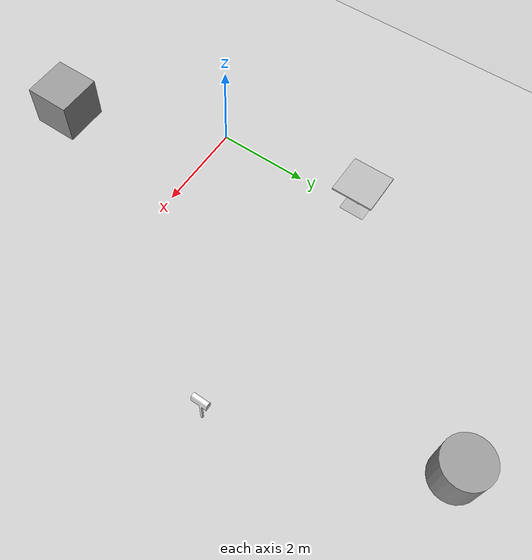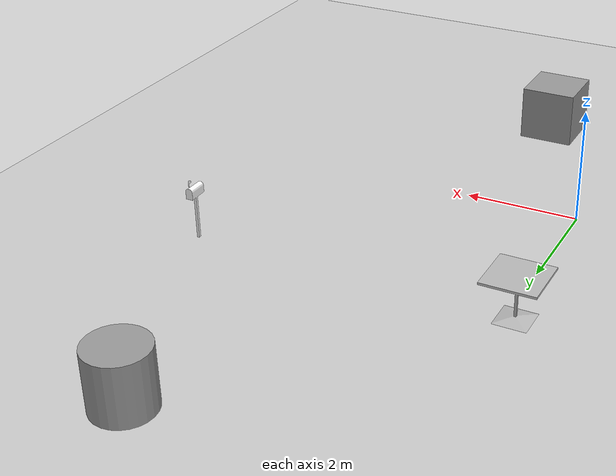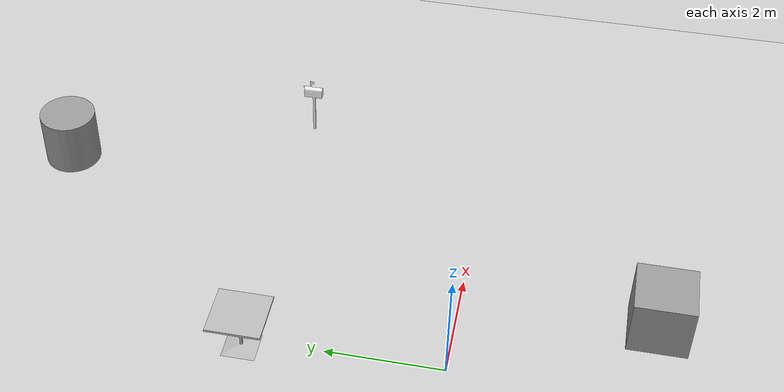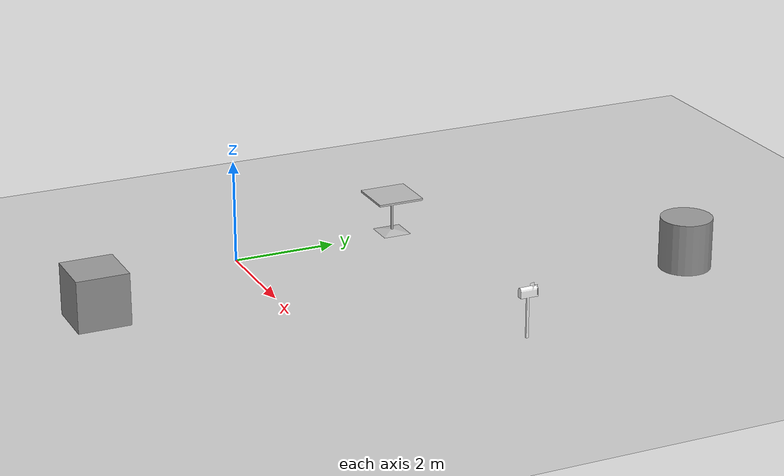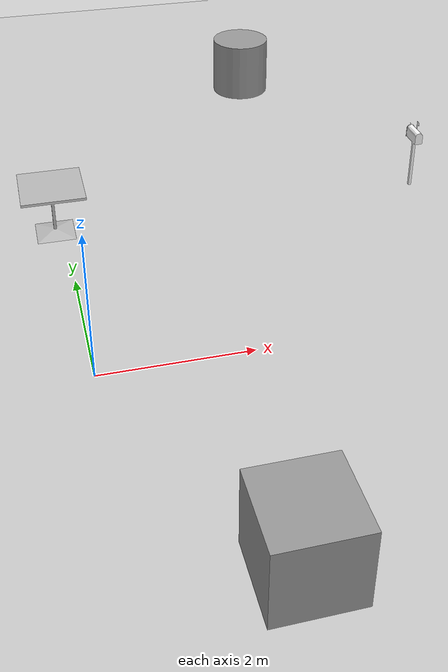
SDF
<sdf version="1.7">
 <world name="default">
  <light name="sun" type="directional">
   <pose>0 0 10 0 -0 0</pose>
   <diffuse>0.8 0.8 0.8 1</diffuse>
   <specular>0.2 0.2 0.2 1</specular>
   <attenuation>
    <range>1000</range>
    <constant>0.9</constant>
    <linear>0.01</linear>
    <quadratic>0.001</quadratic>
   </attenuation>
   <direction>-0.5 0.1 -0.9</direction>
   <spot><inner_angle>0</inner_angle><outer_angle>0</outer_angle><falloff>0</falloff></spot>
  </light>
  <model name="ground_plane">
   <static>1</static>
   <link name="link">
    <collision name="collision">
     <geometry><plane><normal>0 0 1</normal><size>100 100</size></plane></geometry>
     <surface><friction><ode><mu>100</mu><mu2>50</mu2></ode></friction></surface>
    </collision>
    <visual name="visual">
     <cast_shadows>0</cast_shadows>
     <geometry><plane><normal>0 0 1</normal><size>100 100</size></plane></geometry>
     <material>
      <script><uri>file://media/materials/scripts/gazebo.material</uri><name>Gazebo/Grey</name></script>
     </material>
    </visual>
   </link>
  </model>
  <gravity>0 0 -9.8</gravity>
  <magnetic_field>6e-06 2.3e-05 -4.2e-05</magnetic_field>
  <atmosphere type="adiabatic"/>
  <physics type="ode">
   <max_step_size>0.001</max_step_size>
   <real_time_factor>1</real_time_factor>
   <real_time_update_rate>1000</real_time_update_rate>
  </physics>
  <scene><ambient>0.4 0.4 0.4 1</ambient><background>0.7 0.7 0.7 1</background><shadows>1</shadows></scene>
  <audio><device>default</device></audio>
  <spherical_coordinates>
   <surface_model>EARTH_WGS84</surface_model>
   <latitude_deg>0</latitude_deg>
   <longitude_deg>0</longitude_deg>
   <elevation>0</elevation>
   <heading_deg>0</heading_deg>
  </spherical_coordinates>
  <model name="cafe_table">
   <static>1</static>
   <link name="link">
    <collision name="surface">
     <pose>0 0 0.755 0 -0 0</pose>
     <geometry><box><size>0.913 0.913 0.04</size></box></geometry>
    </collision>
    <collision name="column">
     <pose>0 0 0.37 0 -0 0</pose>
     <geometry><box><size>0.042 0.042 0.74</size></box></geometry>
    </collision>
    <collision name="base">
     <pose>0 0 0.02 0 -0 0</pose>
     <geometry><box><size>0.56 0.56 0.04</size></box></geometry>
    </collision>
    <visual name="visual">
     <geometry><mesh><uri>model://cafe_table/meshes/cafe_table.dae</uri></mesh></geometry>
    </visual>
   </link>
   <pose>-0.14081 3.33313 0 0 -0 0</pose>
  </model>
  <model name="unit_box">
   <pose>1.5475 -3.27249 0.499995 -1e-05 -0 -0</pose>
   <link name="link">
    <inertial>
     <mass>1</mass>
     <inertia>
      <ixx>0.166667</ixx>
      <ixy>0</ixy>
      <ixz>0</ixz>
      <iyy>0.166667</iyy>
      <iyz>0</iyz>
      <izz>0.166667</izz>
     </inertia>
    </inertial>
    <collision name="collision"><geometry><box><size>1 1 1</size></box></geometry></collision>
    <visual name="visual">
     <geometry><box><size>1 1 1</size></box></geometry>
     <material>
      <script><name>Gazebo/Grey</name><uri>file://media/materials/scripts/gazebo.material</uri></script>
     </material>
    </visual>
   </link>
  </model>
  <model name="unit_cylinder">
   <pose>3.80382 7.62717 0.499993 -3e-06 -4e-06 -0</pose>
   <link name="link">
    <inertial>
     <mass>1</mass>
     <inertia><ixx>0.145833</ixx><ixy>0</ixy><ixz>0</ixz><iyy>0.145833</iyy><iyz>0</iyz><izz>0.125</izz></inertia>
    </inertial>
    <collision name="collision">
     <geometry><cylinder><radius>0.5</radius><length>1</length></cylinder></geometry>
    </collision>
    <visual name="visual">
     <geometry><cylinder><radius>0.5</radius><length>1</length></cylinder></geometry>
     <material>
      <script><name>Gazebo/Grey</name><uri>file://media/materials/scripts/gazebo.material</uri></script>
     </material>
    </visual>
   </link>
  </model>
  <model name="Mailbox">
   <link name="link">
    <collision name="collision">
     <geometry><mesh><uri>model://mailbox/meshes/mailbox.dae</uri></mesh></geometry>
    </collision>
    <visual name="visual">
     <geometry><mesh><uri>model://mailbox/meshes/mailbox.dae</uri></mesh></geometry>
     <material>
      <script>
       <uri>model://mailbox/materials/scripts</uri>
       <uri>model://mailbox/materials/textures</uri>
       <name>Mailbox/Diffuse</name>
      </script>
     </material>
    </visual>
    <inertial>
     <inertia><ixx>1</ixx><ixy>0</ixy><ixz>0</ixz><iyy>1</iyy><iyz>0</iyz><izz>1</izz></inertia>
     <mass>1</mass>
    </inertial>
   </link>
   <pose>5.48328 3.38078 0 0 -1e-06 0</pose>
  </model>
 </world>
</sdf>
